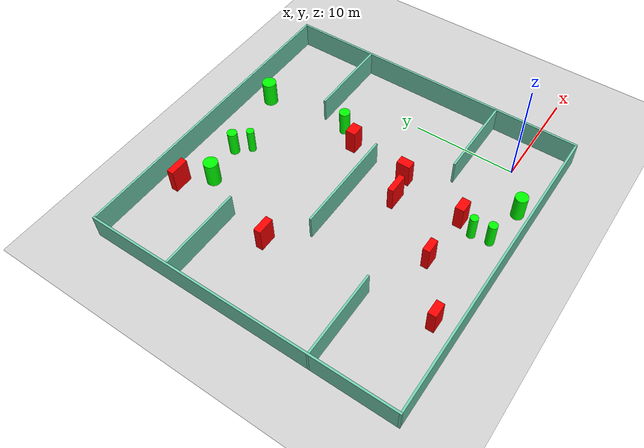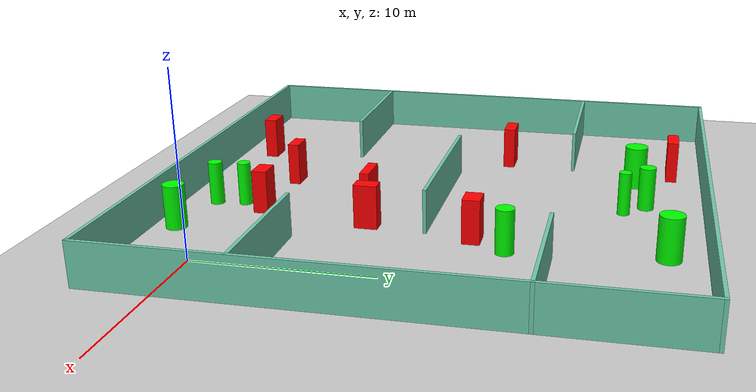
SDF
<sdf version="1.7">
 <world name="default">
  <light name="sun" type="directional">
   <pose>0 0 10 0 -0 0</pose>
   <diffuse>0.8 0.8 0.8 1</diffuse>
   <specular>0.2 0.2 0.2 1</specular>
   <attenuation>
    <range>1000</range>
    <constant>0.9</constant>
    <linear>0.01</linear>
    <quadratic>0.001</quadratic>
   </attenuation>
   <direction>-0.5 0.1 -0.9</direction>
   <spot><inner_angle>0</inner_angle><outer_angle>0</outer_angle><falloff>0</falloff></spot>
  </light>
  <model name="ground_plane">
   <static>1</static>
   <link name="link">
    <collision name="collision">
     <geometry><plane><normal>0 0 1</normal><size>100 100</size></plane></geometry>
     <surface>
      <contact><collide_bitmask>65535</collide_bitmask></contact>
      <friction><ode><mu>100</mu><mu2>50</mu2></ode></friction>
     </surface>
    </collision>
    <visual name="visual">
     <cast_shadows>0</cast_shadows>
     <geometry><plane><normal>0 0 1</normal><size>100 100</size></plane></geometry>
     <material>
      <script><uri>file://media/materials/scripts/gazebo.material</uri><name>Gazebo/Grey</name></script>
     </material>
    </visual>
   </link>
  </model>
  <gravity>0 0 -9.8</gravity>
  <magnetic_field>6e-06 2.3e-05 -4.2e-05</magnetic_field>
  <atmosphere type="adiabatic"/>
  <physics type="ode">
   <max_step_size>0.001</max_step_size>
   <real_time_factor>1</real_time_factor>
   <real_time_update_rate>1000</real_time_update_rate>
  </physics>
  <scene><ambient>0.4 0.4 0.4 1</ambient><background>0.7 0.7 0.7 1</background><shadows>1</shadows></scene>
  <spherical_coordinates>
   <surface_model>EARTH_WGS84</surface_model>
   <latitude_deg>0</latitude_deg>
   <longitude_deg>0</longitude_deg>
   <elevation>0</elevation>
   <heading_deg>0</heading_deg>
  </spherical_coordinates>
  <model name="my_base_walls">
   <link name="Wall_10">
    <collision name="Wall_10_Collision">
     <geometry><box><size>8.2 0.2 2.5</size></box></geometry>
     <pose>0 0 1.25 0 -0 0</pose>
    </collision>
    <visual name="Wall_10_Visual">
     <pose>0 0 1.25 0 -0 0</pose>
     <geometry><box><size>8.2 0.2 2.5</size></box></geometry>
     <material>
      <script><uri>file://media/materials/scripts/gazebo.material</uri><name>Gazebo/Grey</name></script>
      <ambient>0.435294 0.796078 0.67451 1</ambient>
     </material>
     <meta><layer>0</layer></meta>
    </visual>
    <pose>-11 -7 0 0 -0 0</pose>
   </link>
   <link name="Wall_12">
    <collision name="Wall_12_Collision">
     <geometry><box><size>8.2 0.2 2.5</size></box></geometry>
     <pose>0 0 1.25 0 -0 0</pose>
    </collision>
    <visual name="Wall_12_Visual">
     <pose>0 0 1.25 0 -0 0</pose>
     <geometry><box><size>8.2 0.2 2.5</size></box></geometry>
     <material>
      <script><uri>file://media/materials/scripts/gazebo.material</uri><name>Gazebo/Grey</name></script>
      <ambient>0.435294 0.796078 0.67451 1</ambient>
     </material>
     <meta><layer>0</layer></meta>
    </visual>
    <pose>-11 7 0 0 -0 0</pose>
   </link>
   <link name="Wall_14">
    <collision name="Wall_14_Collision">
     <geometry><box><size>8.2 0.2 2.5</size></box></geometry>
     <pose>0 0 1.25 0 -0 0</pose>
    </collision>
    <visual name="Wall_14_Visual">
     <pose>0 0 1.25 0 -0 0</pose>
     <geometry><box><size>8.2 0.2 2.5</size></box></geometry>
     <material>
      <script><uri>file://media/materials/scripts/gazebo.material</uri><name>Gazebo/Grey</name></script>
      <ambient>0.435294 0.796078 0.67451 1</ambient>
     </material>
     <meta><layer>0</layer></meta>
    </visual>
    <pose>11 7 0 0 -0 3.14159</pose>
   </link>
   <link name="Wall_16">
    <collision name="Wall_16_Collision">
     <geometry><box><size>10.2 0.2 2.5</size></box></geometry>
     <pose>0 0 1.25 0 -0 0</pose>
    </collision>
    <visual name="Wall_16_Visual">
     <pose>0 0 1.25 0 -0 0</pose>
     <geometry><box><size>10.2 0.2 2.5</size></box></geometry>
     <material>
      <script><uri>file://media/materials/scripts/gazebo.material</uri><name>Gazebo/Grey</name></script>
      <ambient>0.435294 0.796078 0.67451 1</ambient>
     </material>
     <meta><layer>0</layer></meta>
    </visual>
    <pose>0 0 0 0 -0 3.14159</pose>
   </link>
   <link name="Wall_2">
    <collision name="Wall_2_Collision">
     <geometry><box><size>30.2 0.2 2.5</size></box></geometry>
     <pose>0 0 1.25 0 -0 0</pose>
    </collision>
    <visual name="Wall_2_Visual">
     <pose>0 0 1.25 0 -0 0</pose>
     <geometry><box><size>30.2 0.2 2.5</size></box></geometry>
     <material>
      <script><uri>file://media/materials/scripts/gazebo.material</uri><name>Gazebo/Grey</name></script>
      <ambient>0.435294 0.796078 0.67451 1</ambient>
     </material>
     <meta><layer>0</layer></meta>
    </visual>
    <pose>0 -15 0 0 -0 3.14159</pose>
   </link>
   <link name="Wall_3">
    <collision name="Wall_3_Collision">
     <geometry><box><size>30.2 0.2 2.5</size></box></geometry>
     <pose>0 0 1.25 0 -0 0</pose>
    </collision>
    <visual name="Wall_3_Visual">
     <pose>0 0 1.25 0 -0 0</pose>
     <geometry><box><size>30.2 0.2 2.5</size></box></geometry>
     <material>
      <script><uri>file://media/materials/scripts/gazebo.material</uri><name>Gazebo/Grey</name></script>
      <ambient>0.435294 0.796078 0.67451 1</ambient>
     </material>
     <meta><layer>0</layer></meta>
    </visual>
    <pose>-15 0 0 0 -0 1.5708</pose>
   </link>
   <link name="Wall_4">
    <collision name="Wall_4_Collision">
     <geometry><box><size>30.2 0.2 2.5</size></box></geometry>
     <pose>0 0 1.25 0 -0 0</pose>
    </collision>
    <visual name="Wall_4_Visual">
     <pose>0 0 1.25 0 -0 0</pose>
     <geometry><box><size>30.2 0.2 2.5</size></box></geometry>
     <material>
      <script><uri>file://media/materials/scripts/gazebo.material</uri><name>Gazebo/Grey</name></script>
      <ambient>0.435294 0.796078 0.67451 1</ambient>
     </material>
     <meta><layer>0</layer></meta>
    </visual>
    <pose>0 15 0 0 -0 0</pose>
   </link>
   <link name="Wall_6">
    <collision name="Wall_6_Collision">
     <geometry><box><size>30.2 0.2 2.5</size></box></geometry>
     <pose>0 0 1.25 0 -0 0</pose>
    </collision>
    <visual name="Wall_6_Visual">
     <pose>0 0 1.25 0 -0 0</pose>
     <geometry><box><size>30.2 0.2 2.5</size></box></geometry>
     <material>
      <script><uri>file://media/materials/scripts/gazebo.material</uri><name>Gazebo/Grey</name></script>
      <ambient>0.435294 0.796078 0.67451 1</ambient>
     </material>
     <meta><layer>0</layer></meta>
    </visual>
    <pose>15 0 0 0 -0 1.5708</pose>
   </link>
   <link name="Wall_8">
    <collision name="Wall_8_Collision">
     <geometry><box><size>8.2 0.2 2.5</size></box></geometry>
     <pose>0 0 1.25 0 -0 0</pose>
    </collision>
    <visual name="Wall_8_Visual">
     <pose>0 0 1.25 0 -0 0</pose>
     <geometry><box><size>8.2 0.2 2.5</size></box></geometry>
     <material>
      <script><uri>file://media/materials/scripts/gazebo.material</uri><name>Gazebo/Grey</name></script>
      <ambient>0.435294 0.796078 0.67451 1</ambient>
     </material>
     <meta><layer>0</layer></meta>
    </visual>
    <pose>11 -7 0 0 -0 3.14159</pose>
   </link>
   <static>1</static>
   <pose>-11 11 0 0 -0 0</pose>
  </model>
  <model name="cylinder1">
   <static>1</static>
   <link name="link">
    <inertial>
     <mass>1</mass>
     <inertia><ixx>0.5</ixx><ixy>0</ixy><ixz>0</ixz><iyy>0.5</iyy><iyz>0</iyz><izz>1</izz></inertia>
    </inertial>
    <collision name="collision">
     <geometry><cylinder><radius>0.5098997506152596</radius><length>2.5</length></cylinder></geometry>
    </collision>
    <visual name="visual">
     <geometry><cylinder><radius>0.5098997506152596</radius><length>2.5</length></cylinder></geometry>
     <material>
      <ambient>0 1 0 1</ambient>
      <diffuse>0 1 0 1</diffuse>
      <specular>0.1 0.1 0.1 1</specular>
      <emissive>0 0 0 0</emissive>
     </material>
    </visual>
   </link>
   <pose>-4.240681762294198 15.608631618582326 1.25 0 0 0</pose>
  </model>
  <model name="cylinder2">
   <static>1</static>
   <link name="link">
    <inertial>
     <mass>1</mass>
     <inertia><ixx>0.5</ixx><ixy>0</ixy><ixz>0</ixz><iyy>0.5</iyy><iyz>0</iyz><izz>1</izz></inertia>
    </inertial>
    <collision name="collision">
     <geometry><cylinder><radius>0.37919533754229057</radius><length>2.5</length></cylinder></geometry>
    </collision>
    <visual name="visual">
     <geometry><cylinder><radius>0.37919533754229057</radius><length>2.5</length></cylinder></geometry>
     <material>
      <ambient>0 1 0 1</ambient>
      <diffuse>0 1 0 1</diffuse>
      <specular>0.1 0.1 0.1 1</specular>
      <emissive>0 0 0 0</emissive>
     </material>
    </visual>
   </link>
   <pose>-8.312789244916878 -0.24126765255118077 1.25 0 0 0</pose>
  </model>
  <model name="cylinder3">
   <static>1</static>
   <link name="link">
    <inertial>
     <mass>1</mass>
     <inertia><ixx>0.5</ixx><ixy>0</ixy><ixz>0</ixz><iyy>0.5</iyy><iyz>0</iyz><izz>1</izz></inertia>
    </inertial>
    <collision name="collision">
     <geometry><cylinder><radius>0.6723144472781567</radius><length>2.5</length></cylinder></geometry>
    </collision>
    <visual name="visual">
     <geometry><cylinder><radius>0.6723144472781567</radius><length>2.5</length></cylinder></geometry>
     <material>
      <ambient>0 1 0 1</ambient>
      <diffuse>0 1 0 1</diffuse>
      <specular>0.1 0.1 0.1 1</specular>
      <emissive>0 0 0 0</emissive>
     </material>
    </visual>
   </link>
   <pose>-15.969631543694106 21.93833310524837 1.25 0 0 0</pose>
  </model>
  <model name="cylinder4">
   <static>1</static>
   <link name="link">
    <inertial>
     <mass>1</mass>
     <inertia><ixx>0.5</ixx><ixy>0</ixy><ixz>0</ixz><iyy>0.5</iyy><iyz>0</iyz><izz>1</izz></inertia>
    </inertial>
    <collision name="collision">
     <geometry><cylinder><radius>0.46621808069661597</radius><length>2.5</length></cylinder></geometry>
    </collision>
    <visual name="visual">
     <geometry><cylinder><radius>0.46621808069661597</radius><length>2.5</length></cylinder></geometry>
     <material>
      <ambient>0 1 0 1</ambient>
      <diffuse>0 1 0 1</diffuse>
      <specular>0.1 0.1 0.1 1</specular>
      <emissive>0 0 0 0</emissive>
     </material>
    </visual>
   </link>
   <pose>-12.15000886649097 22.655012305298147 1.25 0 0 0</pose>
  </model>
  <model name="cylinder5">
   <static>1</static>
   <link name="link">
    <inertial>
     <mass>1</mass>
     <inertia><ixx>0.5</ixx><ixy>0</ixy><ixz>0</ixz><iyy>0.5</iyy><iyz>0</iyz><izz>1</izz></inertia>
    </inertial>
    <collision name="collision">
     <geometry><cylinder><radius>0.5973696731589125</radius><length>2.5</length></cylinder></geometry>
    </collision>
    <visual name="visual">
     <geometry><cylinder><radius>0.5973696731589125</radius><length>2.5</length></cylinder></geometry>
     <material>
      <ambient>0 1 0 1</ambient>
      <diffuse>0 1 0 1</diffuse>
      <specular>0.1 0.1 0.1 1</specular>
      <emissive>0 0 0 0</emissive>
     </material>
    </visual>
   </link>
   <pose>-4.115870947834978 -2.564020125697133 1.25 0 0 0</pose>
  </model>
  <model name="cylinder6">
   <static>1</static>
   <link name="link">
    <inertial>
     <mass>1</mass>
     <inertia><ixx>0.5</ixx><ixy>0</ixy><ixz>0</ixz><iyy>0.5</iyy><iyz>0</iyz><izz>1</izz></inertia>
    </inertial>
    <collision name="collision">
     <geometry><cylinder><radius>0.6695833230123998</radius><length>2.5</length></cylinder></geometry>
    </collision>
    <visual name="visual">
     <geometry><cylinder><radius>0.6695833230123998</radius><length>2.5</length></cylinder></geometry>
     <material>
      <ambient>0 1 0 1</ambient>
      <diffuse>0 1 0 1</diffuse>
      <specular>0.1 0.1 0.1 1</specular>
      <emissive>0 0 0 0</emissive>
     </material>
    </visual>
   </link>
   <pose>-5.004889101055493 23.934574839834834 1.25 0 0 0</pose>
  </model>
  <model name="cylinder7">
   <static>1</static>
   <link name="link">
    <inertial>
     <mass>1</mass>
     <inertia><ixx>0.5</ixx><ixy>0</ixy><ixz>0</ixz><iyy>0.5</iyy><iyz>0</iyz><izz>1</izz></inertia>
    </inertial>
    <collision name="collision">
     <geometry><cylinder><radius>0.3574431409336971</radius><length>2.5</length></cylinder></geometry>
    </collision>
    <visual name="visual">
     <geometry><cylinder><radius>0.3574431409336971</radius><length>2.5</length></cylinder></geometry>
     <material>
      <ambient>0 1 0 1</ambient>
      <diffuse>0 1 0 1</diffuse>
      <specular>0.1 0.1 0.1 1</specular>
      <emissive>0 0 0 0</emissive>
     </material>
    </visual>
   </link>
   <pose>-11.043472783604892 21.4326504060797 1.25 0 0 0</pose>
  </model>
  <model name="cylinder8">
   <static>1</static>
   <link name="link">
    <inertial>
     <mass>1</mass>
     <inertia><ixx>0.5</ixx><ixy>0</ixy><ixz>0</ixz><iyy>0.5</iyy><iyz>0</iyz><izz>1</izz></inertia>
    </inertial>
    <collision name="collision">
     <geometry><cylinder><radius>0.4090314028747486</radius><length>2.5</length></cylinder></geometry>
    </collision>
    <visual name="visual">
     <geometry><cylinder><radius>0.4090314028747486</radius><length>2.5</length></cylinder></geometry>
     <material>
      <ambient>0 1 0 1</ambient>
      <diffuse>0 1 0 1</diffuse>
      <specular>0.1 0.1 0.1 1</specular>
      <emissive>0 0 0 0</emissive>
     </material>
    </visual>
   </link>
   <pose>-8.092559382862623 -1.9062806827707708 1.25 0 0 0</pose>
  </model>
  <model name="box1">
   <static>1</static>
   <link name="link">
    <inertial>
     <mass>1</mass>
     <inertia><ixx>0.083</ixx><ixy>0</ixy><ixz>0</ixz><iyy>0.083</iyy><iyz>0</iyz><izz>0.083</izz></inertia>
    </inertial>
    <collision name="collision">
     <geometry><box><size>1.3782810153200962 0.7588048963214162 2.5</size></box></geometry>
    </collision>
    <visual name="visual">
     <geometry><box><size>1.3782810153200962 0.7588048963214162 2.5</size></box></geometry>
     <material>
      <ambient>1 0 0 1</ambient>
      <diffuse>1 0 0 1</diffuse>
      <specular>0.1 0.1 0.1 1</specular>
      <emissive>0 0 0 0</emissive>
     </material>
    </visual>
    <sensor name="my_contact" type="contact">
     <contact><collision>box_collision</collision><topic>__default_topic__</topic></contact>
    </sensor>
   </link>
   <pose>-17.49695018460051 -1.8997498366105443 1.25 0 0 0</pose>
  </model>
  <model name="box2">
   <static>1</static>
   <link name="link">
    <inertial>
     <mass>1</mass>
     <inertia><ixx>0.083</ixx><ixy>0</ixy><ixz>0</ixz><iyy>0.083</iyy><iyz>0</iyz><izz>0.083</izz></inertia>
    </inertial>
    <collision name="collision">
     <geometry><box><size>1.8313890034828457 0.657156545322337 2.5</size></box></geometry>
    </collision>
    <visual name="visual">
     <geometry><box><size>1.8313890034828457 0.657156545322337 2.5</size></box></geometry>
     <material>
      <ambient>1 0 0 1</ambient>
      <diffuse>1 0 0 1</diffuse>
      <specular>0.1 0.1 0.1 1</specular>
      <emissive>0 0 0 0</emissive>
     </material>
    </visual>
    <sensor name="my_contact" type="contact">
     <contact><collision>box_collision</collision><topic>__default_topic__</topic></contact>
    </sensor>
   </link>
   <pose>-17.919374559073322 24.127049501164457 1.25 0 0 0</pose>
  </model>
  <model name="box3">
   <static>1</static>
   <link name="link">
    <inertial>
     <mass>1</mass>
     <inertia><ixx>0.083</ixx><ixy>0</ixy><ixz>0</ixz><iyy>0.083</iyy><iyz>0</iyz><izz>0.083</izz></inertia>
    </inertial>
    <collision name="collision">
     <geometry><box><size>1.9401187778292182 0.5574473999555916 2.5</size></box></geometry>
    </collision>
    <visual name="visual">
     <geometry><box><size>1.9401187778292182 0.5574473999555916 2.5</size></box></geometry>
     <material>
      <ambient>1 0 0 1</ambient>
      <diffuse>1 0 0 1</diffuse>
      <specular>0.1 0.1 0.1 1</specular>
      <emissive>0 0 0 0</emissive>
     </material>
    </visual>
    <sensor name="my_contact" type="contact">
     <contact><collision>box_collision</collision><topic>__default_topic__</topic></contact>
    </sensor>
   </link>
   <pose>-8.77228621498379 7.115383261105823 1.25 0 0 0</pose>
  </model>
  <model name="box4">
   <static>1</static>
   <link name="link">
    <inertial>
     <mass>1</mass>
     <inertia><ixx>0.083</ixx><ixy>0</ixy><ixz>0</ixz><iyy>0.083</iyy><iyz>0</iyz><izz>0.083</izz></inertia>
    </inertial>
    <collision name="collision">
     <geometry><box><size>1.6635249087807653 0.6862397450629637 2.5</size></box></geometry>
    </collision>
    <visual name="visual">
     <geometry><box><size>1.6635249087807653 0.6862397450629637 2.5</size></box></geometry>
     <material>
      <ambient>1 0 0 1</ambient>
      <diffuse>1 0 0 1</diffuse>
      <specular>0.1 0.1 0.1 1</specular>
      <emissive>0 0 0 0</emissive>
     </material>
    </visual>
    <sensor name="my_contact" type="contact">
     <contact><collision>box_collision</collision><topic>__default_topic__</topic></contact>
    </sensor>
   </link>
   <pose>-18.700891557573815 13.895489400953135 1.25 0 0 0</pose>
  </model>
  <model name="box5">
   <static>1</static>
   <link name="link">
    <inertial>
     <mass>1</mass>
     <inertia><ixx>0.083</ixx><ixy>0</ixy><ixz>0</ixz><iyy>0.083</iyy><iyz>0</iyz><izz>0.083</izz></inertia>
    </inertial>
    <collision name="collision">
     <geometry><box><size>0.8716767436097363 1.31144041158863 2.5</size></box></geometry>
    </collision>
    <visual name="visual">
     <geometry><box><size>0.8716767436097363 1.31144041158863 2.5</size></box></geometry>
     <material>
      <ambient>1 0 0 1</ambient>
      <diffuse>1 0 0 1</diffuse>
      <specular>0.1 0.1 0.1 1</specular>
      <emissive>0 0 0 0</emissive>
     </material>
    </visual>
    <sensor name="my_contact" type="contact">
     <contact><collision>box_collision</collision><topic>__default_topic__</topic></contact>
    </sensor>
   </link>
   <pose>-6.322102960427678 7.692493475921218 1.25 0 0 0</pose>
  </model>
  <model name="box6">
   <static>1</static>
   <link name="link">
    <inertial>
     <mass>1</mass>
     <inertia><ixx>0.083</ixx><ixy>0</ixy><ixz>0</ixz><iyy>0.083</iyy><iyz>0</iyz><izz>0.083</izz></inertia>
    </inertial>
    <collision name="collision">
     <geometry><box><size>1.3724878375955485 0.6656613357461733 2.5</size></box></geometry>
    </collision>
    <visual name="visual">
     <geometry><box><size>1.3724878375955485 0.6656613357461733 2.5</size></box></geometry>
     <material>
      <ambient>1 0 0 1</ambient>
      <diffuse>1 0 0 1</diffuse>
      <specular>0.1 0.1 0.1 1</specular>
      <emissive>0 0 0 0</emissive>
     </material>
    </visual>
    <sensor name="my_contact" type="contact">
     <contact><collision>box_collision</collision><topic>__default_topic__</topic></contact>
    </sensor>
   </link>
   <pose>-12.702417807497357 1.4228002568181477 1.25 0 0 0</pose>
  </model>
  <model name="box7">
   <static>1</static>
   <link name="link">
    <inertial>
     <mass>1</mass>
     <inertia><ixx>0.083</ixx><ixy>0</ixy><ixz>0</ixz><iyy>0.083</iyy><iyz>0</iyz><izz>0.083</izz></inertia>
    </inertial>
    <collision name="collision">
     <geometry><box><size>1.2512358514053448 0.9774555564658933 2.5</size></box></geometry>
    </collision>
    <visual name="visual">
     <geometry><box><size>1.2512358514053448 0.9774555564658933 2.5</size></box></geometry>
     <material>
      <ambient>1 0 0 1</ambient>
      <diffuse>1 0 0 1</diffuse>
      <specular>0.1 0.1 0.1 1</specular>
      <emissive>0 0 0 0</emissive>
     </material>
    </visual>
    <sensor name="my_contact" type="contact">
     <contact><collision>box_collision</collision><topic>__default_topic__</topic></contact>
    </sensor>
   </link>
   <pose>-5.521882319527098 13.705664010626759 1.25 0 0 0</pose>
  </model>
  <model name="box8">
   <static>1</static>
   <link name="link">
    <inertial>
     <mass>1</mass>
     <inertia><ixx>0.083</ixx><ixy>0</ixy><ixz>0</ixz><iyy>0.083</iyy><iyz>0</iyz><izz>0.083</izz></inertia>
    </inertial>
    <collision name="collision">
     <geometry><box><size>1.3059382052130828 0.8515490396561561 2.5</size></box></geometry>
    </collision>
    <visual name="visual">
     <geometry><box><size>1.3059382052130828 0.8515490396561561 2.5</size></box></geometry>
     <material>
      <ambient>1 0 0 1</ambient>
      <diffuse>1 0 0 1</diffuse>
      <specular>0.1 0.1 0.1 1</specular>
      <emissive>0 0 0 0</emissive>
     </material>
    </visual>
    <sensor name="my_contact" type="contact">
     <contact><collision>box_collision</collision><topic>__default_topic__</topic></contact>
    </sensor>
   </link>
   <pose>-7.591414538226092 1.2098328305148023 1.25 0 0 0</pose>
  </model>
 </world>
</sdf>
